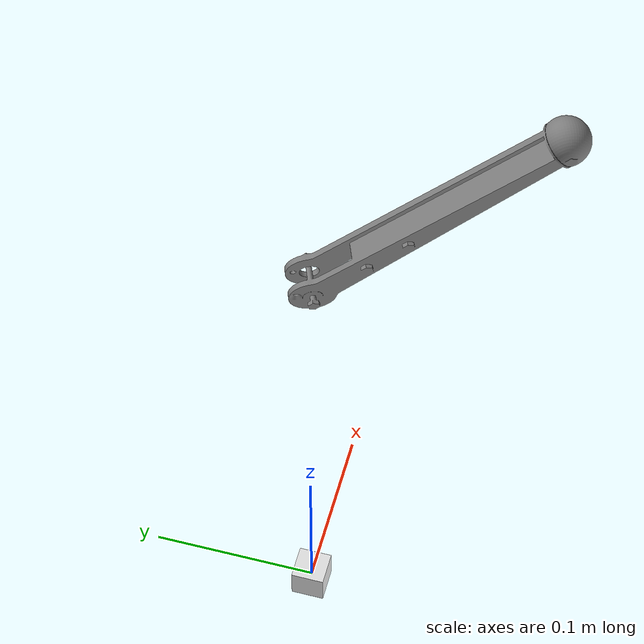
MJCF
<mujoco model="jaco2">
    <compiler angle="radian" meshdir="meshes" balanceinertia="true"/>

    <asset>
        <!-- arm models -->

        <mesh file="front_alu_3.STL"/>
        <mesh file="front_alu_1.STL"/>
        <mesh file="back_alu_1.STL"/>
        <mesh file="back_alu_2.STL"/>
        <mesh file="battery.STL"/>
        <mesh file="logic.STL"/>
        <mesh file="logic2.STL"/>
        <mesh file="electronics.STL"/>
        <mesh file="encoder.STL"/>
        <mesh file="gearbox_1.STL"/>
        <mesh file="gearbox_3.STL"/>
        <mesh file="gearbox1_spacer.STL"/>
        <mesh file="gearbox2.STL"/>
        <mesh file="lower_leg.STL"/>
        <mesh file="upper_leg_belt.STL"/>
        <mesh file="upper_leg.STL"/>
        <mesh file="spacer_spine.STL"/>

        <material name="aluminium" rgba="0.5 0.5 0.5 1"/>
        <material name="petg" rgba="0.8 0.8 0.8 1"/>
        <material name="carbon" rgba="0.05 0.05 0.05 1"/>
        <material name="silicone" rgba="0.612 0.11 0.42 1"/>
        <material name="pcb" rgba="0.553 0.71 0.502 1"/>

    </asset>

    <worldbody>

 <light directional="true" pos="-0.5 0 3" dir="0 0 -1" />
		            <geom type="box" size="0.01 0.01 0.01" rgba=".9 .9 .9 1"/>
		                <body name = "chassis" pos="0 0 0.3" euler='0 0 0'>

<!-- leg 3 -->

                        <body name="lower_leg" pos="0 0 0" >
                    <geom name="lower_leg" type="mesh" mesh="lower_leg" pos="0 0 0" material="aluminium" euler="2 2 2"/>
                    <inertial pos="0.1430000 0.0000000 -0.0085000" mass="0.2580000" fullinertia="0.0000637 0.0056950 0.0057070 0.0000000 0.0003144 0.0000000" />

                        </body>

</body>
    </worldbody>

<actuator>

</actuator>

</mujoco>
